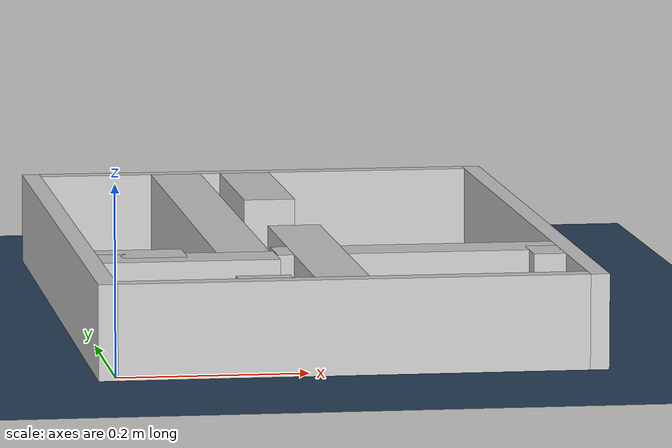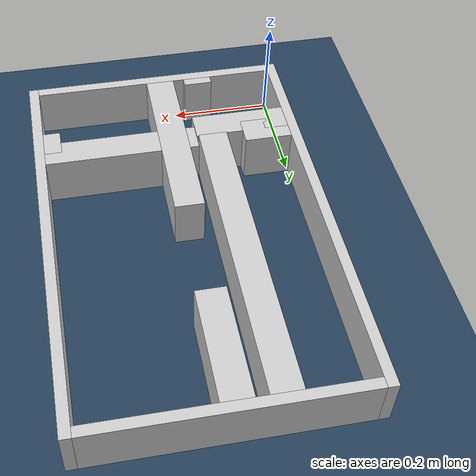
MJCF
<?xml version="1.0" ?>
<mujoco model="generated_real_template">
  <compiler angle="degree"/>
  <option timestep="0.002" integrator="implicitfast" iterations="100" cone="elliptic"/>
  <default>
    <geom density="1"/>
  </default>
  <asset>
    <texture builtin="gradient" height="3072" rgb1="0.3 0.5 0.7" rgb2="0 0 0" type="skybox" width="512"/>
    <texture builtin="checker" height="300" mark="edge" markrgb="0.8 0.8 0.8" name="groundplane" rgb1="0.2 0.3 0.4" rgb2="0.1 0.2 0.3" type="2d" width="300"/>
    <material name="groundplane" reflectance="0.2" texrepeat="5 5" texture="groundplane" texuniform="true"/>
  </asset>
  <worldbody>
    <light dir="0 0 -1" directional="true" pos="0 0 1.5"/>
    <geom name="floor" type="plane" condim="4" friction="0.5 0.005 0.001" material="groundplane" size="0 0 0.05"/>
    <body name="walls">
      <geom name="wall_boundary_left" type="box" condim="4" friction="1.0 0.005 0.0001" rgba="0.8 0.8 0.8 1" pos="-0.010000 0.387500 0.050000" euler="0 0 0.000000" size="0.010000 0.407500 0.050000"/>
      <geom name="wall_boundary_right" type="box" condim="4" friction="1.0 0.005 0.0001" rgba="0.8 0.8 0.8 1" pos="0.500000 0.387500 0.050000" euler="0 0 0.000000" size="0.010000 0.407500 0.050000"/>
      <geom name="wall_boundary_bottom" type="box" condim="4" friction="1.0 0.005 0.0001" rgba="0.8 0.8 0.8 1" pos="0.245000 -0.010000 0.050000" euler="0 0 0.000000" size="0.245000 0.010000 0.050000"/>
      <geom name="wall_boundary_top" type="box" condim="4" friction="1.0 0.005 0.0001" rgba="0.8 0.8 0.8 1" pos="0.245000 0.785000 0.050000" euler="0 0 0.000000" size="0.245000 0.010000 0.050000"/>
      <geom name="wall_inner_1_1" type="box" condim="4" friction="1.0 0.005 0.0001" rgba="0.8 0.8 0.8 1" pos="0.046533 0.180728 0.050000" euler="0 0 0.000000" size="0.046533 0.028500 0.050000"/>
      <geom name="wall_inner_1_2" type="box" condim="4" friction="1.0 0.005 0.0001" rgba="0.8 0.8 0.8 1" pos="0.338875 0.180728 0.050000" euler="0 0 0.000000" size="0.151125 0.028500 0.050000"/>
      <geom name="wall_inner_2_1" type="box" condim="4" friction="1.0 0.005 0.0001" rgba="0.8 0.8 0.8 1" pos="0.234022 0.181309 0.050000" euler="0 0 90.000000" size="0.181309 0.028500 0.050000"/>
      <geom name="wall_inner_2_2" type="box" condim="4" friction="1.0 0.005 0.0001" rgba="0.8 0.8 0.8 1" pos="0.234022 0.666691 0.050000" euler="0 0 90.000000" size="0.108309 0.028500 0.050000"/>
      <geom name="wall_inner_3_1" type="box" condim="4" friction="1.0 0.005 0.0001" rgba="0.8 0.8 0.8 1" pos="0.154780 0.009044 0.050000" euler="0 0 90.000000" size="0.009044 0.028500 0.050000"/>
      <geom name="wall_inner_3_2" type="box" condim="4" friction="1.0 0.005 0.0001" rgba="0.8 0.8 0.8 1" pos="0.154780 0.476169 0.050000" euler="0 0 90.000000" size="0.298831 0.028500 0.050000"/>
      <geom name="wall_inner_4_1" type="box" condim="4" friction="1.0 0.005 0.0001" rgba="0.8 0.8 0.8 1" pos="0.093525 0.151193 0.050000" euler="0 0 0.000000" size="0.093525 0.028500 0.050000"/>
      <geom name="wall_inner_4_2" type="box" condim="4" friction="1.0 0.005 0.0001" rgba="0.8 0.8 0.8 1" pos="0.472990 0.151193 0.050000" euler="0 0 0.000000" size="0.017010 0.028500 0.050000"/>
    </body>
  </worldbody>
</mujoco>
